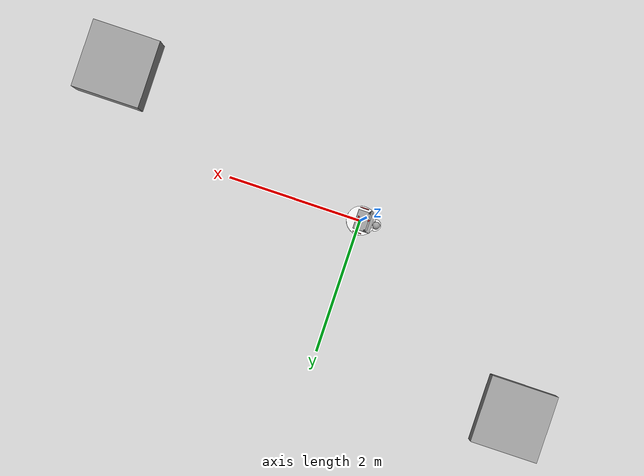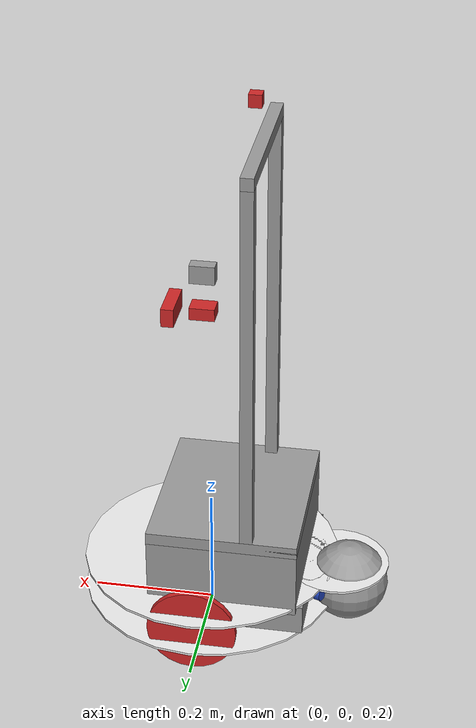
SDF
<sdf version="1.5">
 <world name="default">
  <include><uri>model://sun</uri></include>
  <include><uri>model://ground_plane</uri></include>
  <include><name>espresso_frame</name><uri>model://EspressoFrameMain</uri><pose>0 0 0.2 0 0 0</pose></include>
  <model name="room_objects1">
   <pose>4 -1 0.2 0 0 0</pose>
   <link name="box1">
    <inertial>
     <pose>-0.1 0 0 0 0 0</pose>
     <mass>1.0</mass>
     <inertia><ixx>0.1</ixx><ixy>0.0</ixy><ixz>0.0</ixz><iyy>0.1</iyy><iyz>0.0</iyz><izz>0.1</izz></inertia>
    </inertial>
    <collision name="collision"><geometry><box><size>1.0 1.0 0.4</size></box></geometry></collision>
    <visual name="visual">
     <geometry><box><size>1.0 1.0 0.4</size></box></geometry>
     <material>
      <script><uri>file://media/materials/scripts/gazebo.material</uri><name>Gazebo/Grey</name></script>
     </material>
    </visual>
   </link>
  </model>
  <model name="room_objects2">
   <pose>-3 2 0 0 0 0</pose>
   <link name="box1">
    <inertial>
     <pose>-0.1 0 0 0 0 0</pose>
     <mass>1.0</mass>
     <inertia><ixx>0.1</ixx><ixy>0.0</ixy><ixz>0.0</ixz><iyy>0.1</iyy><iyz>0.0</iyz><izz>0.1</izz></inertia>
    </inertial>
    <collision name="collision"><geometry><box><size>1.0 1.0 0.4</size></box></geometry></collision>
    <visual name="visual">
     <geometry><box><size>1.0 1.0 0.4</size></box></geometry>
     <material>
      <script><uri>file://media/materials/scripts/gazebo.material</uri><name>Gazebo/Grey</name></script>
     </material>
    </visual>
   </link>
  </model>
  <scene><ambient>0.6 0.6 0.6 1</ambient><background>0.6 0.6 0.6 1</background><shadows>1</shadows></scene>
  <physics type="ode">
   <max_step_size>0.005</max_step_size>
   <real_time_factor>1</real_time_factor>
   <real_time_update_rate>200</real_time_update_rate>
  </physics>
 </world>
</sdf>

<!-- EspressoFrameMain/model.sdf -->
<sdf version="1.4">
  <model name="EspressoFrameMain">
    <include>
      <name>espresso_frame_move</name>
      <uri>model://EspressoFrameMove</uri>
      <pose>0 0 0 0 0 0</pose>
    </include>

    <include>
      <name>espresso_frame_tower</name>
      <uri>model://EspressoFrameTower</uri>
      <pose>0 0 0.2 0 0 0</pose>
    </include>

    <include>
      <name>espresso_frame_head</name>
      <uri>model://EspressoFrameHead</uri>
      <pose>0.02 0 0.6 0 0 0</pose>
    </include>

    <joint name='espresso_frame_tower_joint' type='fixed'>
      <parent>espresso_frame_move::body_link</parent>
      <child>espresso_frame_tower::body_link</child>
      <pose>0 0 0 0 0 0</pose>
    </joint>

    <joint name='espresso_frame_head_joint' type='fixed'>
      <parent>espresso_frame_move::body_link</parent>
      <child>espresso_frame_head::body_link</child>
      <pose>0 0 0 0 0 0</pose>
    </joint>

  </model>
</sdf>

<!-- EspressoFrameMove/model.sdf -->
<sdf version="1.4">
  <model name="EspressoFrameMove">
    <link name="body_link">
      <pose>0 0 0.072 0 0 0</pose>
      <inertial>
        <pose>-0.06 0 0 0 0 0</pose>
        <mass>4.0</mass>
        <inertia>
          <ixx>0.033</ixx>
          <ixy>0.0</ixy>
          <ixz>0.0</ixz>
          <iyy>0.033</iyy>
          <iyz>0.0</iyz>
          <izz>0.06</izz>
        </inertia>
      </inertial>
      <collision name="collision">
        <pose>-0.06 0 0 0 0 0</pose>
        <geometry>
          <box>
            <size>0.220 0.260 0.05</size>
          </box>
        </geometry>
      </collision>
      <visual name="visual">
        <pose>-0.06 0 0 0 0 0</pose>
        <geometry>
          <box>
            <size>0.220 0.260 0.05</size>
          </box>
        </geometry>
        <material>
          <script>
            <uri>file://media/materials/scripts/gazebo.material</uri>
            <name>Gazebo/Grey</name>
          </script>
        </material>
      </visual>

      <visual name="visual1">
        <pose>0 0 0.027 0 0 0</pose>
        <geometry>
          <cylinder>
            <radius>0.210</radius>
            <length>0.004</length>
          </cylinder>
        </geometry>
        <material>
          <script>
            <uri>file://media/materials/scripts/gazebo.material</uri>
            <name>Gazebo/White</name>
          </script>
        </material>
      </visual>
      <visual name="visual2">
        <pose>-0.210 0 0.027 0 0 0</pose>
        <geometry>
          <cylinder>
            <radius>0.085</radius>
            <length>0.004</length>
          </cylinder>
        </geometry>
        <material>
          <script>
            <uri>file://media/materials/scripts/gazebo.material</uri>
            <name>Gazebo/White</name>
          </script>
        </material>
      </visual>
      <visual name="visual3">
        <pose>0 0 -0.027 0 0 0</pose>
        <geometry>
          <cylinder>
            <radius>0.210</radius>
            <length>0.004</length>
          </cylinder>
        </geometry>
        <material>
          <script>
            <uri>file://media/materials/scripts/gazebo.material</uri>
            <name>Gazebo/White</name>
          </script>
        </material>
      </visual>

    </link>

    <joint name='left_wheel_joint' type='revolute'>
      <parent>body_link</parent>
      <child>left_wheel_link</child>
      <pose>0 0 0.072 0 0 0</pose>
      <axis>
        <use_parent_model_frame>true</use_parent_model_frame>
        <xyz>0 1 0</xyz>
      </axis>
    </joint>
    <link name="left_wheel_link">
      <pose>0 0.18 0.072 1.5707 0 0</pose>
      <inertial>
        <mass>0.1</mass>
        <inertia>
          <ixx>0.00013</ixx>
          <ixy>0.0</ixy>
          <ixz>0.0</ixz>
          <iyy>0.00013</iyy>
          <iyz>0.0</iyz>
          <izz>0.00026</izz>
        </inertia>
      </inertial>
      <collision name="collision">
        <geometry>
          <cylinder>
            <radius>0.072</radius>
            <length>0.01</length>
          </cylinder>
        </geometry>
        <surface>
          <contact>
            <ode>
              <kp>100000</kp>
              <kd>1</kd>
            </ode>
          </contact>
        </surface>
      </collision>
      <visual name="visual">
        <geometry>
          <cylinder>
            <radius>0.072</radius>
            <length>0.01</length>
          </cylinder>
        </geometry>
        <material>
          <script>
            <uri>file://media/materials/scripts/gazebo.material</uri>
            <name>Gazebo/Red</name>
          </script>
        </material>
      </visual>
    </link>

    <joint name='right_wheel_joint' type='revolute'>
      <parent>body_link</parent>
      <child>right_wheel_link</child>
      <pose>0 0 0.072 0 0 0</pose>
      <axis>
        <use_parent_model_frame>true</use_parent_model_frame>
        <xyz>0 1 0</xyz>
      </axis>
    </joint>
    <link name="right_wheel_link">
      <pose>0 -0.18 0.072 1.5707 0 0</pose>
      <inertial>
        <mass>0.1</mass>
        <inertia>
          <ixx>0.00013</ixx>
          <ixy>0.0</ixy>
          <ixz>0.0</ixz>
          <iyy>0.00013</iyy>
          <iyz>0.0</iyz>
          <izz>0.00026</izz>
        </inertia>
      </inertial>
      <collision name="collision">
        <geometry>
          <cylinder>
            <radius>0.072</radius>
            <length>0.01</length>
          </cylinder>
        </geometry>
        <surface>
          <contact>
            <ode>
              <kp>100000</kp>
              <kd>1</kd>
            </ode>
          </contact>
        </surface>
      </collision>
      <visual name="visual">
        <geometry>
          <cylinder>
            <radius>0.072</radius>
            <length>0.01</length>
          </cylinder>
        </geometry>
        <material>
          <script>
            <uri>file://media/materials/scripts/gazebo.material</uri>
            <name>Gazebo/Red</name>
          </script>
        </material>
      </visual>
    </link>

    <joint name='caster_joint' type='fixed'>
      <parent>body_link</parent>
      <child>caster_link</child>
      <pose>0 0 0 0 0 0</pose>
      <axis>
        <use_parent_model_frame>true</use_parent_model_frame>
        <xyz>0 1 0</xyz>
      </axis>
    </joint>
    <link name="caster_link">
      <pose>-0.23 0 0.065 0 0 0</pose>
      <inertial>
        <mass>0.1</mass>
        <inertia>
          <ixx>0.00017</ixx>
          <ixy>0.0</ixy>
          <ixz>0.0</ixz>
          <iyy>0.00017</iyy>
          <iyz>0.0</iyz>
          <izz>0.00017</izz>
        </inertia>
      </inertial>
      <collision name="collision">
        <geometry>
          <sphere>
            <radius>0.065</radius>
          </sphere>
        </geometry>
        <surface>
          <friction>
            <ode>
              <mu>0.01</mu>
              <mu2>0.01</mu2>
            </ode>
          </friction>
          <contact>
            <ode>
              <kp>50000</kp>
              <kd>1</kd>
            </ode>
          </contact>
        </surface>
      </collision>
      <visual name="visual">
        <geometry>
          <sphere>
            <radius>0.065</radius>
          </sphere>
        </geometry>
        <material>
          <script>
            <uri>file://media/materials/scripts/gazebo.material</uri>
            <name>Gazebo/Gray</name>
          </script>
        </material>
      </visual>
    </link>

    <joint name='front_sensor_joint' type='fixed'>
      <parent>body_link</parent>
      <child>front_laser_link</child>
      <pose>0 0 0 0 0 0</pose>
      <axis>
        <use_parent_model_frame>true</use_parent_model_frame>
        <xyz>0 1 0</xyz>
      </axis>
    </joint>
    <link name="front_laser_link">
      <pose>0.138 0 0.06 0 0 0</pose>
      <inertial>
        <mass>0.1</mass>
        <inertia>
          <ixx>0.000015</ixx>
          <ixy>0.0</ixy>
          <ixz>0.0</ixz>
          <iyy>0.000015</iyy>
          <iyz>0.0</iyz>
          <izz>0.000015</izz>
        </inertia>
      </inertial>
      <collision name="collision">
        <geometry>
          <cylinder>
            <radius>0.033</radius>
            <length>0.01</length>
          </cylinder>
        </geometry>
      </collision>
      <visual name="visual">
        <geometry>
          <cylinder>
            <radius>0.033</radius>
            <length>0.01</length>
          </cylinder>
        </geometry>
        <material>
          <script>
            <uri>file://media/materials/scripts/gazebo.material</uri>
            <name>Gazebo/Blue</name>
          </script>
        </material>
      </visual>

      <sensor type="ray" name="front_laser">
        <pose>0 0 0 0 0 0</pose>
        <update_rate>10</update_rate>
        <ray>
          <scan>
            <horizontal>
              <samples>400</samples>
              <resolution>1</resolution>
              <min_angle>-3.1415</min_angle>
              <max_angle>3.1415</max_angle>
            </horizontal>
          </scan>
          <range>
            <min>0.1</min>
            <max>20.0</max>
            <resolution>0.01</resolution>
          </range>
          <noise>
            <type>gaussian</type>
            <mean>0.0</mean>
            <stddev>0.01</stddev>
          </noise>
        </ray>
        <plugin name="gazebo_lidar_plugin" filename="libgazebo_ros_ray_sensor.so">
          <ros>
            <argument>~/out:=/device/front_laser/scan</argument>
          </ros>
          <output_type>sensor_msgs/LaserScan</output_type>
        </plugin>
      </sensor>
    </link>

    <joint name='sonar_0_joint' type='fixed'>
      <parent>body_link</parent>
      <child>sonar_0_link</child>
    </joint>
    <link name="sonar_0_link">
      <pose>-0.19 0.06 0.08 0 0 2.8</pose>
      <inertial>
        <mass>0.1</mass>
        <inertia>
          <ixx>0.000015</ixx>
          <ixy>0.0</ixy>
          <ixz>0.0</ixz>
          <iyy>0.000015</iyy>
          <iyz>0.0</iyz>
          <izz>0.000015</izz>
        </inertia>
      </inertial>
      <visual name="visual">
        <pose>0 0 0 0 1.5707 0</pose>
        <geometry>
          <cylinder>
            <radius>0.015</radius>
            <length>0.01</length>
          </cylinder>
        </geometry>
        <material>
          <script>
            <uri>file://media/materials/scripts/gazebo.material</uri>
            <name>Gazebo/Blue</name>
          </script>
        </material>
      </visual>

      <sensor type="ray" name="TeraRanger">
        <pose>0 0 0 0 0 0</pose>
        <visualize>true</visualize>
        <update_rate>10</update_rate>
        <ray>
          <scan>
              <horizontal>
                <samples>3</samples>
                <resolution>1</resolution>
                <min_angle>-0.12</min_angle>
                <max_angle>0.12</max_angle>
              </horizontal>
              <vertical>
                <samples>3</samples>
                <resolution>1</resolution>
                <min_angle>-0.05</min_angle>
                <max_angle>0.05</max_angle>
              </vertical>
          </scan>
          <range>
              <min>0.20</min>
              <max>1</max>
              <resolution>0.01</resolution>
          </range>
        </ray>
      </sensor>
    </link>

    <joint name='sonar_1_joint' type='fixed'>
      <parent>body_link</parent>
      <child>sonar_1_link</child>
    </joint>
    <link name="sonar_1_link">
      <pose>-0.19 -0.06 0.08 0 0 -2.8</pose>
      <inertial>
        <mass>0.1</mass>
        <inertia>
          <ixx>0.000015</ixx>
          <ixy>0.0</ixy>
          <ixz>0.0</ixz>
          <iyy>0.000015</iyy>
          <iyz>0.0</iyz>
          <izz>0.000015</izz>
        </inertia>
      </inertial>
      <visual name="visual">
        <pose>0 0 0 0 1.5707 0</pose>
        <geometry>
          <cylinder>
            <radius>0.015</radius>
            <length>0.01</length>
          </cylinder>
        </geometry>
        <material>
          <script>
            <uri>file://media/materials/scripts/gazebo.material</uri>
            <name>Gazebo/Blue</name>
          </script>
        </material>
      </visual>

      <sensor type="ray" name="TeraRanger">
        <pose>0 0 0 0 0 0</pose>
        <visualize>true</visualize>
        <update_rate>10</update_rate>
        <ray>
          <scan>
              <horizontal>
                <samples>3</samples>
                <resolution>1</resolution>
                <min_angle>-0.12</min_angle>
                <max_angle>0.12</max_angle>
              </horizontal>
              <vertical>
                <samples>3</samples>
                <resolution>1</resolution>
                <min_angle>-0.05</min_angle>
                <max_angle>0.05</max_angle>
              </vertical>
          </scan>
          <range>
              <min>0.20</min>
              <max>1</max>
              <resolution>0.01</resolution>
          </range>
        </ray>
      </sensor>
    </link>

    <joint name='frame_joint' type='fixed'>
      <parent>body_link</parent>
      <child>frame_link</child>
    </joint>

    <link name="frame_link">
      <pose>0 0 0.150 0 0 0</pose>
      <inertial>
        <pose>-0.04 0 0 0 0 0</pose>
        <mass>1.0</mass>
        <inertia>
          <ixx>0.0077</ixx>
          <ixy>0.0</ixy>
          <ixz>0.0</ixz>
          <iyy>0.0059</iyy>
          <iyz>0.0</iyz>
          <izz>0.011</izz>
        </inertia>
      </inertial>

      <visual name="visual_base">
        <pose>-0.04 0 0 0 0 0</pose>
        <geometry>
          <box>
            <size>0.24 0.28 0.12</size>
          </box>
        </geometry>
        <material>
          <script>
            <uri>file://media/materials/scripts/gazebo.material</uri>
            <name>Gazebo/Grey</name>
          </script>
        </material>
      </visual>
    </link>

    <plugin name="mavros_move_plugin" filename="libmavros_move_plugin.so">
    </plugin>
  </model>
</sdf>

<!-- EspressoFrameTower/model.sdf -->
<sdf version="1.4">
  <model name="EspressoFrameTower">
    <link name="body_link">
      <pose>0 0 0 0 0 0</pose>
      <inertial>
        <pose>-0.04 0 0 0 0 0</pose>
        <mass>1.0</mass>
        <inertia>
          <ixx>0.0065</ixx>
          <ixy>0.0</ixy>
          <ixz>0.0</ixz>
          <iyy>0.0048</iyy>
          <iyz>0.0</iyz>
          <izz>0.011</izz>
        </inertia>
      </inertial>
      <collision name="collision">
        <pose>-0.04 0 0.01 0 0 0</pose>
        <geometry>
          <box>
            <size>0.240 0.280 0.02</size>
          </box>
        </geometry>
      </collision>
      <visual name="visual">
        <pose>-0.04 0 0.01 0 0 0</pose>
        <geometry>
          <box>
            <size>0.240 0.280 0.02</size>
          </box>
        </geometry>
        <material>
          <script>
            <uri>file://media/materials/scripts/gazebo.material</uri>
            <name>Gazebo/Grey</name>
          </script>
        </material>
      </visual>
      <visual name="visual_left">
        <pose>-0.08 0.13 0.32 0 0 0</pose>
        <geometry>
          <box>
            <size>0.02 0.02 0.6</size>
          </box>
        </geometry>
        <material>
          <script>
            <uri>file://media/materials/scripts/gazebo.material</uri>
            <name>Gazebo/Gray</name>
          </script>
        </material>
      </visual>
      <visual name="visual_right">
        <pose>-0.08 -0.13 0.32 0 0 0</pose>
        <geometry>
          <box>
            <size>0.02 0.02 0.6</size>
          </box>
        </geometry>
        <material>
          <script>
            <uri>file://media/materials/scripts/gazebo.material</uri>
            <name>Gazebo/Gray</name>
          </script>
        </material>
      </visual>
      <visual name="visual_top">
        <pose>-0.08 0 0.63 0 0 0</pose>
        <geometry>
          <box>
            <size>0.02 0.28 0.02</size>
          </box>
        </geometry>
        <material>
          <script>
            <uri>file://media/materials/scripts/gazebo.material</uri>
            <name>Gazebo/Gray</name>
          </script>
        </material>
      </visual>
    </link>

    <joint name='top_camera_joint' type='fixed'>
      <parent>body_link</parent>
      <child>top_camera_link</child>
    </joint>

    <link name="top_camera_link">
      <pose>-0.07 0 0.7 0 0 0</pose>
      <visual name="visual1">
        <geometry>
          <box>
            <size>0.02 0.02 0.02</size>
          </box>
        </geometry>
        <material>
          <script>
            <uri>file://media/materials/scripts/gazebo.material</uri>
            <name>Gazebo/Red</name>
          </script>
        </material>
      </visual>
      <sensor type="camera" name="camera1">
        <visualize>true</visualize>
        <update_rate>10.0</update_rate>
        <camera name="top">
          <horizontal_fov>2.0</horizontal_fov>
          <image>
            <width>320</width>
            <height>240</height>
            <format>R8G8B8</format>
          </image>
          <clip>
            <near>0.02</near>
            <far>30</far>
          </clip>
          <noise>
            <type>gaussian</type>
            <mean>0.0</mean>
            <stddev>0.007</stddev>
          </noise>
        </camera>
        <plugin name="top_camera_controller" filename="libgazebo_ros_camera.so">
          <alwaysOn>true</alwaysOn>
          <updateRate>0.0</updateRate>
          <cameraName>top_camera</cameraName>
          <imageTopicName>/device/top_camera/image_raw</imageTopicName>
          <cameraInfoTopicName>/device/top_camera/camera_info</cameraInfoTopicName>
          <frameName>top_camera_optical_link</frameName>
          <hackBaseline>0.0</hackBaseline>
          <distortionK1>0.0</distortionK1>
          <distortionK2>0.0</distortionK2>
          <distortionK3>0.0</distortionK3>
          <distortionT1>0.0</distortionT1>
          <distortionT2>0.0</distortionT2>
        </plugin>
      </sensor>
    </link>
  </model>
</sdf>

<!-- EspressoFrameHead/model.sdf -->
<sdf version="1.4">
  <model name="EspressoFrameHead">
    <link name="body_link">
      <pose>0 0 0 0 0 0</pose>
      <inertial>
        <pose>-0.01 0 0.015 0 0 0</pose>
        <mass>0.1</mass>
        <inertia>
          <ixx>0.0000108</ixx>
          <ixy>0.0</ixy>
          <ixz>0.0</ixz>
          <iyy>0.0000208</iyy>
          <iyz>0.0</iyz>
          <izz>0.0000167</izz>
        </inertia>
      </inertial>
      <collision name="collision">
        <pose>-0.01 0 0.015 0 0 0</pose>
        <geometry>
          <box>
            <size>0.04 0.02 0.03</size>
          </box>
        </geometry>
      </collision>
      <visual name="visual">
        <pose>-0.01 0 0.015 0 0 0</pose>
        <geometry>
          <box>
            <size>0.04 0.02 0.03</size>
          </box>
        </geometry>
        <material>
          <script>
            <uri>file://media/materials/scripts/gazebo.material</uri>
            <name>Gazebo/Grey</name>
          </script>
        </material>
      </visual>
    </link>

    <joint name='yaw_joint' type='revolute'>
      <parent>body_link</parent>
      <child>yaw_link</child>
      <pose>0 0 0 0 0 0</pose>
      <axis>
        <use_parent_model_frame>true</use_parent_model_frame>
        <xyz>0 0 1</xyz>
        <limit>
          <lower>-1.5707</lower>
          <upper>1.5707</upper>
          <effort>1.0</effort>
          <velocity>3.0</velocity>
        </limit>
      </axis>
    </joint>

    <link name="yaw_link">
      <pose>0 0 -0.05 0 0 0</pose>
      <inertial>
        <mass>0.1</mass>
        <inertia>
          <ixx>0.0000167</ixx>
          <ixy>0.0</ixy>
          <ixz>0.0</ixz>
          <iyy>0.0000108</iyy>
          <iyz>0.0</iyz>
          <izz>0.0000208</izz>
        </inertia>
      </inertial>
      <collision name="collision">
        <pose>-0.01 0 0 0 0 0</pose>
        <geometry>
          <box>
            <size>0.04 0.03 0.02</size>
          </box>
        </geometry>
      </collision>
      <visual name="visual1">
        <pose>-0.01 0 0 0 0 0</pose>
        <geometry>
          <box>
            <size>0.04 0.03 0.02</size>
          </box>
        </geometry>
        <material>
          <script>
            <uri>file://media/materials/scripts/gazebo.material</uri>
            <name>Gazebo/Red</name>
          </script>
        </material>
      </visual>
    </link>

    <joint name='pitch_joint' type='revolute'>
      <parent>yaw_link</parent>
      <child>pitch_link</child>
      <pose>-0.04 0 0 0 0 0</pose>
      <axis>
        <use_parent_model_frame>true</use_parent_model_frame>
        <xyz>0 1 0</xyz>
        <limit>
          <lower>-1.5707</lower>
          <upper>1.5707</upper>
          <effort>1.0</effort>
          <velocity>3.0</velocity>
        </limit>
        <dynamics>
          <damping>0.0001</damping>
          <friction>0.0002</friction>
        </dynamics>
      </axis>
    </joint>

    <link name="pitch_link">
      <pose>0.04 0 -0.05 0 0 0</pose>
      <inertial>
        <pose>-0.04 0 0 0 0 0</pose>
        <mass>0.1</mass>
        <inertia>
          <ixx>0.000044</ixx>
          <ixy>0.0</ixy>
          <ixz>0.0</ixz>
          <iyy>0.000011</iyy>
          <iyz>0.0</iyz>
          <izz>0.000048</izz>
        </inertia>
      </inertial>
      <collision name="collision">
        <geometry>
          <box>
            <size>0.02 0.07 0.03</size>
          </box>
        </geometry>
      </collision>
      <visual name="visual1">
        <geometry>
          <box>
            <size>0.02 0.07 0.03</size>
          </box>
        </geometry>
        <material>
          <script>
            <uri>file://media/materials/scripts/gazebo.material</uri>
            <name>Gazebo/Red</name>
          </script>
        </material>
      </visual>
      <sensor type="camera" name="camera1">
        <visualize>true</visualize>
        <update_rate>10.0</update_rate>
        <camera name="head">
          <horizontal_fov>1.3</horizontal_fov>
          <image>
            <width>800</width>
            <height>600</height>
            <format>R8G8B8</format>
          </image>
          <clip>
            <near>0.02</near>
            <far>50</far>
          </clip>
          <noise>
            <type>gaussian</type>
            <mean>0.0</mean>
            <stddev>0.007</stddev>
          </noise>
        </camera>
        <plugin name="camera_controller" filename="libgazebo_ros_camera.so">
          <alwaysOn>true</alwaysOn>
          <updateRate>0.0</updateRate>
          <cameraName>head_camera</cameraName>
          <imageTopicName>/device/head_camera/image_raw</imageTopicName>
          <cameraInfoTopicName>/device/head_camera/camera_info</cameraInfoTopicName>
          <frameName>head_camera_optical_link</frameName>
          <hackBaseline>0.0</hackBaseline>
          <distortionK1>0.0</distortionK1>
          <distortionK2>0.0</distortionK2>
          <distortionK3>0.0</distortionK3>
          <distortionT1>0.0</distortionT1>
          <distortionT2>0.0</distortionT2>
        </plugin>
      </sensor>
    </link>

    <plugin name="feetech_turret_plugin" filename="libfeetech_turret_plugin.so">
    </plugin>
  </model>
</sdf>
